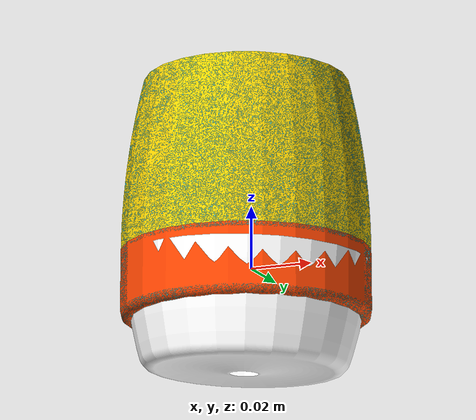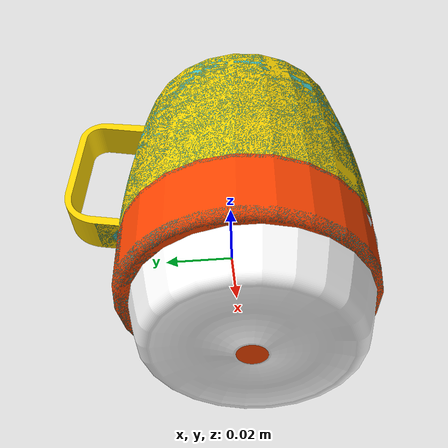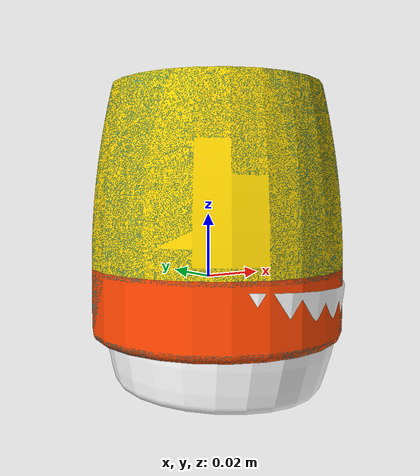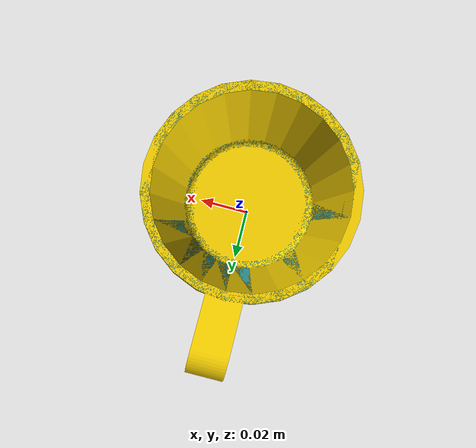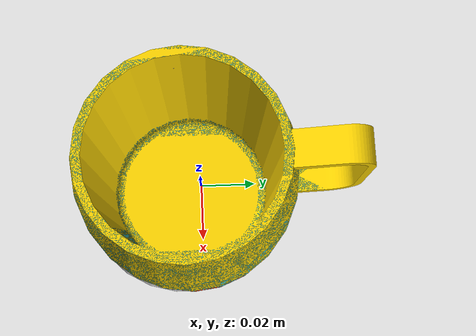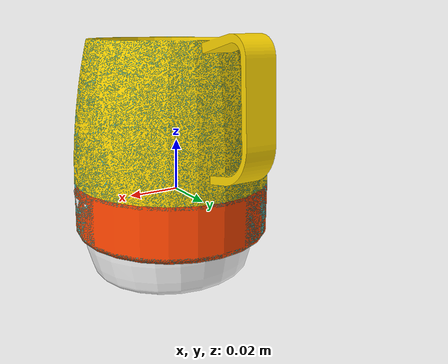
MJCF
<mujoco model="8012f52d">
  <asset>
  <texture file="../../../textures/ceramic.png" name="tex-8012f52d" type="2d" />
  <material name="8012f52d" reflectance="0.5" texrepeat="1 1" texture="tex-8012f52d" texuniform="false" />
  <mesh file="visual/model_normalized_0.obj" name="model_normalized_0_vis" scale="0.15 0.15 0.15" /><mesh file="visual/model_normalized_1.obj" name="model_normalized_1_vis" scale="0.15 0.15 0.15" /><mesh file="visual/model_normalized_2.obj" name="model_normalized_2_vis" scale="0.15 0.15 0.15" /><mesh file="visual/model_normalized_3.obj" name="model_normalized_3_vis" scale="0.15 0.15 0.15" /><mesh file="visual/model_normalized_4.obj" name="model_normalized_4_vis" scale="0.15 0.15 0.15" /><mesh file="collision/model_normalized_collision_13.obj" name="model_normalized_collision_13._coll" scale="0.15 0.15 0.15" /><mesh file="collision/model_normalized_collision_16.obj" name="model_normalized_collision_16._coll" scale="0.15 0.15 0.15" /><mesh file="collision/model_normalized_collision_30.obj" name="model_normalized_collision_30._coll" scale="0.15 0.15 0.15" /><mesh file="collision/model_normalized_collision_21.obj" name="model_normalized_collision_21._coll" scale="0.15 0.15 0.15" /><mesh file="collision/model_normalized_collision_1.obj" name="model_normalized_collision_1._coll" scale="0.15 0.15 0.15" /><mesh file="collision/model_normalized_collision_20.obj" name="model_normalized_collision_20._coll" scale="0.15 0.15 0.15" /><mesh file="collision/model_normalized_collision_27.obj" name="model_normalized_collision_27._coll" scale="0.15 0.15 0.15" /><mesh file="collision/model_normalized_collision_10.obj" name="model_normalized_collision_10._coll" scale="0.15 0.15 0.15" /><mesh file="collision/model_normalized_collision_24.obj" name="model_normalized_collision_24._coll" scale="0.15 0.15 0.15" /><mesh file="collision/model_normalized_collision_28.obj" name="model_normalized_collision_28._coll" scale="0.15 0.15 0.15" /><mesh file="collision/model_normalized_collision_25.obj" name="model_normalized_collision_25._coll" scale="0.15 0.15 0.15" /><mesh file="collision/model_normalized_collision_23.obj" name="model_normalized_collision_23._coll" scale="0.15 0.15 0.15" /><mesh file="collision/model_normalized_collision_6.obj" name="model_normalized_collision_6._coll" scale="0.15 0.15 0.15" /><mesh file="collision/model_normalized_collision_8.obj" name="model_normalized_collision_8._coll" scale="0.15 0.15 0.15" /><mesh file="collision/model_normalized_collision_2.obj" name="model_normalized_collision_2._coll" scale="0.15 0.15 0.15" /><mesh file="collision/model_normalized_collision_12.obj" name="model_normalized_collision_12._coll" scale="0.15 0.15 0.15" /><mesh file="collision/model_normalized_collision_4.obj" name="model_normalized_collision_4._coll" scale="0.15 0.15 0.15" /><mesh file="collision/model_normalized_collision_19.obj" name="model_normalized_collision_19._coll" scale="0.15 0.15 0.15" /><mesh file="collision/model_normalized_collision_5.obj" name="model_normalized_collision_5._coll" scale="0.15 0.15 0.15" /><mesh file="collision/model_normalized_collision_14.obj" name="model_normalized_collision_14._coll" scale="0.15 0.15 0.15" /><mesh file="collision/model_normalized_collision_11.obj" name="model_normalized_collision_11._coll" scale="0.15 0.15 0.15" /><mesh file="collision/model_normalized_collision_15.obj" name="model_normalized_collision_15._coll" scale="0.15 0.15 0.15" /><mesh file="collision/model_normalized_collision_18.obj" name="model_normalized_collision_18._coll" scale="0.15 0.15 0.15" /><mesh file="collision/model_normalized_collision_29.obj" name="model_normalized_collision_29._coll" scale="0.15 0.15 0.15" /><mesh file="collision/model_normalized_collision_26.obj" name="model_normalized_collision_26._coll" scale="0.15 0.15 0.15" /><mesh file="collision/model_normalized_collision_17.obj" name="model_normalized_collision_17._coll" scale="0.15 0.15 0.15" /><mesh file="collision/model_normalized_collision_31.obj" name="model_normalized_collision_31._coll" scale="0.15 0.15 0.15" /><mesh file="collision/model_normalized_collision_3.obj" name="model_normalized_collision_3._coll" scale="0.15 0.15 0.15" /><mesh file="collision/model_normalized_collision_9.obj" name="model_normalized_collision_9._coll" scale="0.15 0.15 0.15" /><mesh file="collision/model_normalized_collision_22.obj" name="model_normalized_collision_22._coll" scale="0.15 0.15 0.15" /><mesh file="collision/model_normalized_collision_7.obj" name="model_normalized_collision_7._coll" scale="0.15 0.15 0.15" /><mesh file="collision/model_normalized_collision_0.obj" name="model_normalized_collision_0._coll" scale="0.15 0.15 0.15" /><texture type="2d" name="texture0" file="visual/texture0.png" /><material name="material_0_24" specular="0.4000000000000001" shininess="0.01" rgba="0.282353 0.819608 0.8 1.0" /><material name="material_1_24" specular="0.4000000000000001" shininess="0.01" rgba="1 0.270588 0 1.0" /><material name="material_2_24" specular="0.4000000000000001" shininess="0.01" rgba="1 0.843137 0 1.0" /><material name="material_3_1_8" texture="texture0" specular="0.4000000000000001" shininess="0.01" /><material name="material_4_24" specular="0.4000000000000001" shininess="0.01" rgba="1 1 1 1.0" /></asset>
  <worldbody>
    <body>
      <body name="object">
      <geom solimp="0.998 0.998 0.001" solref="0.001 1" density="100" friction="0.95 0.3 0.1" type="mesh" mesh="model_normalized_0_vis" conaffinity="0" contype="0" group="1" material="material_3_1_8" /><geom solimp="0.998 0.998 0.001" solref="0.001 1" density="100" friction="0.95 0.3 0.1" type="mesh" mesh="model_normalized_1_vis" conaffinity="0" contype="0" group="1" material="material_4_24" /><geom solimp="0.998 0.998 0.001" solref="0.001 1" density="100" friction="0.95 0.3 0.1" type="mesh" mesh="model_normalized_2_vis" conaffinity="0" contype="0" group="1" material="material_2_24" /><geom solimp="0.998 0.998 0.001" solref="0.001 1" density="100" friction="0.95 0.3 0.1" type="mesh" mesh="model_normalized_3_vis" conaffinity="0" contype="0" group="1" material="material_1_24" /><geom solimp="0.998 0.998 0.001" solref="0.001 1" density="100" friction="0.95 0.3 0.1" type="mesh" mesh="model_normalized_4_vis" conaffinity="0" contype="0" group="1" material="material_0_24" /><geom solimp="0.998 0.998 0.001" solref="0.001 1" density="100" friction="0.95 0.3 0.1" type="mesh" mesh="model_normalized_collision_13._coll" group="0" rgba="0.8 0.8 0.8 0.0" /><geom solimp="0.998 0.998 0.001" solref="0.001 1" density="100" friction="0.95 0.3 0.1" type="mesh" mesh="model_normalized_collision_16._coll" group="0" rgba="0.8 0.8 0.8 0.0" /><geom solimp="0.998 0.998 0.001" solref="0.001 1" density="100" friction="0.95 0.3 0.1" type="mesh" mesh="model_normalized_collision_30._coll" group="0" rgba="0.8 0.8 0.8 0.0" /><geom solimp="0.998 0.998 0.001" solref="0.001 1" density="100" friction="0.95 0.3 0.1" type="mesh" mesh="model_normalized_collision_21._coll" group="0" rgba="0.8 0.8 0.8 0.0" /><geom solimp="0.998 0.998 0.001" solref="0.001 1" density="100" friction="0.95 0.3 0.1" type="mesh" mesh="model_normalized_collision_1._coll" group="0" rgba="0.8 0.8 0.8 0.0" /><geom solimp="0.998 0.998 0.001" solref="0.001 1" density="100" friction="0.95 0.3 0.1" type="mesh" mesh="model_normalized_collision_20._coll" group="0" rgba="0.8 0.8 0.8 0.0" /><geom solimp="0.998 0.998 0.001" solref="0.001 1" density="100" friction="0.95 0.3 0.1" type="mesh" mesh="model_normalized_collision_27._coll" group="0" rgba="0.8 0.8 0.8 0.0" /><geom solimp="0.998 0.998 0.001" solref="0.001 1" density="100" friction="0.95 0.3 0.1" type="mesh" mesh="model_normalized_collision_10._coll" group="0" rgba="0.8 0.8 0.8 0.0" /><geom solimp="0.998 0.998 0.001" solref="0.001 1" density="100" friction="0.95 0.3 0.1" type="mesh" mesh="model_normalized_collision_24._coll" group="0" rgba="0.8 0.8 0.8 0.0" /><geom solimp="0.998 0.998 0.001" solref="0.001 1" density="100" friction="0.95 0.3 0.1" type="mesh" mesh="model_normalized_collision_28._coll" group="0" rgba="0.8 0.8 0.8 0.0" /><geom solimp="0.998 0.998 0.001" solref="0.001 1" density="100" friction="0.95 0.3 0.1" type="mesh" mesh="model_normalized_collision_25._coll" group="0" rgba="0.8 0.8 0.8 0.0" /><geom solimp="0.998 0.998 0.001" solref="0.001 1" density="100" friction="0.95 0.3 0.1" type="mesh" mesh="model_normalized_collision_23._coll" group="0" rgba="0.8 0.8 0.8 0.0" /><geom solimp="0.998 0.998 0.001" solref="0.001 1" density="100" friction="0.95 0.3 0.1" type="mesh" mesh="model_normalized_collision_6._coll" group="0" rgba="0.8 0.8 0.8 0.0" /><geom solimp="0.998 0.998 0.001" solref="0.001 1" density="100" friction="0.95 0.3 0.1" type="mesh" mesh="model_normalized_collision_8._coll" group="0" rgba="0.8 0.8 0.8 0.0" /><geom solimp="0.998 0.998 0.001" solref="0.001 1" density="100" friction="0.95 0.3 0.1" type="mesh" mesh="model_normalized_collision_2._coll" group="0" rgba="0.8 0.8 0.8 0.0" /><geom solimp="0.998 0.998 0.001" solref="0.001 1" density="100" friction="0.95 0.3 0.1" type="mesh" mesh="model_normalized_collision_12._coll" group="0" rgba="0.8 0.8 0.8 0.0" /><geom solimp="0.998 0.998 0.001" solref="0.001 1" density="100" friction="0.95 0.3 0.1" type="mesh" mesh="model_normalized_collision_4._coll" group="0" rgba="0.8 0.8 0.8 0.0" /><geom solimp="0.998 0.998 0.001" solref="0.001 1" density="100" friction="0.95 0.3 0.1" type="mesh" mesh="model_normalized_collision_19._coll" group="0" rgba="0.8 0.8 0.8 0.0" /><geom solimp="0.998 0.998 0.001" solref="0.001 1" density="100" friction="0.95 0.3 0.1" type="mesh" mesh="model_normalized_collision_5._coll" group="0" rgba="0.8 0.8 0.8 0.0" /><geom solimp="0.998 0.998 0.001" solref="0.001 1" density="100" friction="0.95 0.3 0.1" type="mesh" mesh="model_normalized_collision_14._coll" group="0" rgba="0.8 0.8 0.8 0.0" /><geom solimp="0.998 0.998 0.001" solref="0.001 1" density="100" friction="0.95 0.3 0.1" type="mesh" mesh="model_normalized_collision_11._coll" group="0" rgba="0.8 0.8 0.8 0.0" /><geom solimp="0.998 0.998 0.001" solref="0.001 1" density="100" friction="0.95 0.3 0.1" type="mesh" mesh="model_normalized_collision_15._coll" group="0" rgba="0.8 0.8 0.8 0.0" /><geom solimp="0.998 0.998 0.001" solref="0.001 1" density="100" friction="0.95 0.3 0.1" type="mesh" mesh="model_normalized_collision_18._coll" group="0" rgba="0.8 0.8 0.8 0.0" /><geom solimp="0.998 0.998 0.001" solref="0.001 1" density="100" friction="0.95 0.3 0.1" type="mesh" mesh="model_normalized_collision_29._coll" group="0" rgba="0.8 0.8 0.8 0.0" /><geom solimp="0.998 0.998 0.001" solref="0.001 1" density="100" friction="0.95 0.3 0.1" type="mesh" mesh="model_normalized_collision_26._coll" group="0" rgba="0.8 0.8 0.8 0.0" /><geom solimp="0.998 0.998 0.001" solref="0.001 1" density="100" friction="0.95 0.3 0.1" type="mesh" mesh="model_normalized_collision_17._coll" group="0" rgba="0.8 0.8 0.8 0.0" /><geom solimp="0.998 0.998 0.001" solref="0.001 1" density="100" friction="0.95 0.3 0.1" type="mesh" mesh="model_normalized_collision_31._coll" group="0" rgba="0.8 0.8 0.8 0.0" /><geom solimp="0.998 0.998 0.001" solref="0.001 1" density="100" friction="0.95 0.3 0.1" type="mesh" mesh="model_normalized_collision_3._coll" group="0" rgba="0.8 0.8 0.8 0.0" /><geom solimp="0.998 0.998 0.001" solref="0.001 1" density="100" friction="0.95 0.3 0.1" type="mesh" mesh="model_normalized_collision_9._coll" group="0" rgba="0.8 0.8 0.8 0.0" /><geom solimp="0.998 0.998 0.001" solref="0.001 1" density="100" friction="0.95 0.3 0.1" type="mesh" mesh="model_normalized_collision_22._coll" group="0" rgba="0.8 0.8 0.8 0.0" /><geom solimp="0.998 0.998 0.001" solref="0.001 1" density="100" friction="0.95 0.3 0.1" type="mesh" mesh="model_normalized_collision_7._coll" group="0" rgba="0.8 0.8 0.8 0.0" /><geom solimp="0.998 0.998 0.001" solref="0.001 1" density="100" friction="0.95 0.3 0.1" type="mesh" mesh="model_normalized_collision_0._coll" group="0" rgba="0.8 0.8 0.8 0.0" /></body>
      <site rgba="0 0 0 0" size="0.005" pos="-5.325675000000807e-06 0.005338001475 -0.022518000750000003" name="bottom_site" />
      <site rgba="0 0 0 0" size="0.005" pos="-5.325675000000807e-06 0.005338001475 0.0606496875" name="top_site" />
      <site rgba="0 0 0 0" size="0.005" pos="0.03824150985 0.05316098775 0.019065843375" name="horizontal_radius_site" />
    </body>
  </worldbody>
</mujoco>
